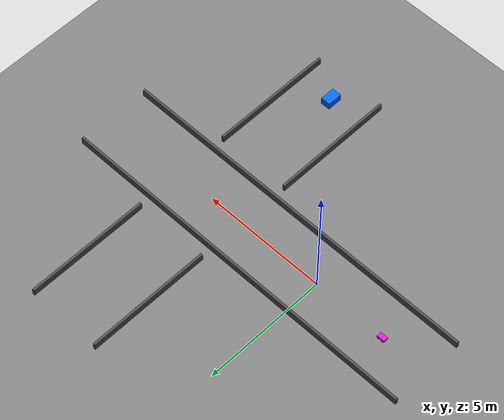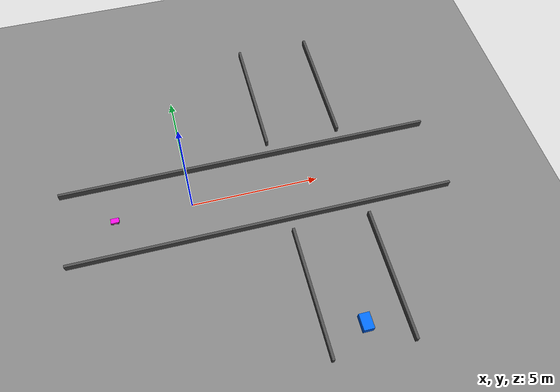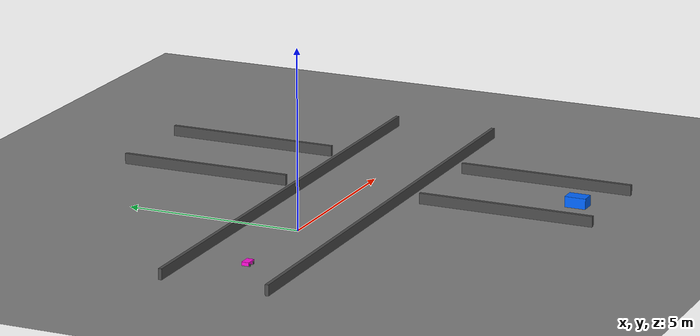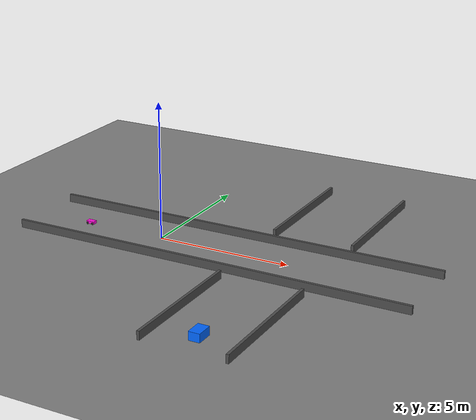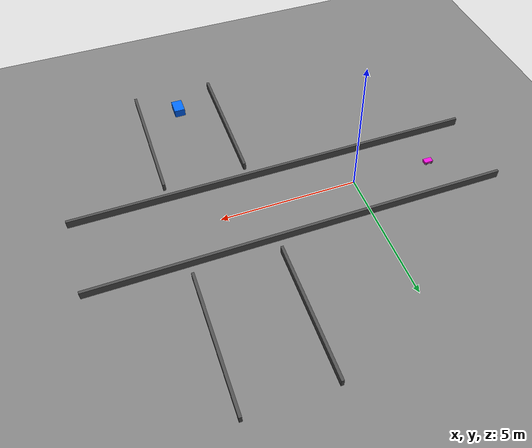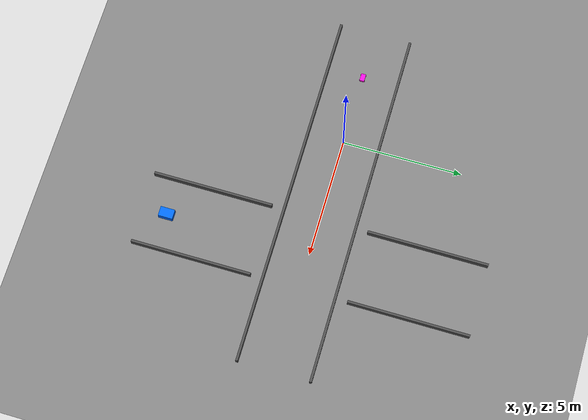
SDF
<?xml version="1.0" ?>
<sdf version="1.9">
  <world name="test_intersection">

    <physics name="fast" type="ode">
      <max_step_size>0.002</max_step_size>
      <real_time_factor>2.0</real_time_factor>
    </physics>

    <plugin filename="gz-sim-physics-system" name="gz::sim::systems::Physics"/>
    <plugin filename="gz-sim-user-commands-system" name="gz::sim::systems::UserCommands"/>
    <plugin filename="gz-sim-scene-broadcaster-system" name="gz::sim::systems::SceneBroadcaster"/>
    <plugin filename="gz-sim-sensors-system" name="gz::sim::systems::Sensors">
      <render_engine>ogre2</render_engine>
    </plugin>
    <plugin filename="gz-sim-imu-system" name="gz::sim::systems::Imu"/>
    <plugin filename="gz-sim-contact-system" name="gz::sim::systems::Contact"/>

    <light type="directional" name="sun">
      <pose>0 0 10 0 0 0</pose>
      <diffuse>0.9 0.9 0.9 1</diffuse>
      <direction>-0.5 0.1 -0.9</direction>
    </light>

    <!-- Ground -->
    <model name="ground">
      <static>true</static>
      <link name="link">
        <collision name="c"><geometry><plane><normal>0 0 1</normal><size>30 30</size></plane></geometry></collision>
        <visual name="v"><geometry><plane><normal>0 0 1</normal><size>30 30</size></plane></geometry>
          <material><ambient>0.5 0.5 0.5 1</ambient></material>
        </visual>
      </link>
    </model>

    <!-- East-west road boundaries -->
    <model name="road_ew_north">
      <static>true</static>
      <pose>2.5 1.5 0.15 0 0 0</pose>
      <link name="link">
        <visual name="v"><geometry><box><size>15 0.1 0.3</size></box></geometry>
          <material><ambient>0.3 0.3 0.3 1</ambient></material>
        </visual>
        <collision name="c"><geometry><box><size>15 0.1 0.3</size></box></geometry></collision>
      </link>
    </model>
    <model name="road_ew_south">
      <static>true</static>
      <pose>2.5 -1.5 0.15 0 0 0</pose>
      <link name="link">
        <visual name="v"><geometry><box><size>15 0.1 0.3</size></box></geometry>
          <material><ambient>0.3 0.3 0.3 1</ambient></material>
        </visual>
        <collision name="c"><geometry><box><size>15 0.1 0.3</size></box></geometry></collision>
      </link>
    </model>

    <!-- North-south road boundaries (with gap at intersection) -->
    <model name="road_ns_west_south">
      <static>true</static>
      <pose>3.5 -4.5 0.15 0 0 0</pose>
      <link name="link">
        <visual name="v"><geometry><box><size>0.1 5 0.3</size></box></geometry>
          <material><ambient>0.3 0.3 0.3 1</ambient></material>
        </visual>
        <collision name="c"><geometry><box><size>0.1 5 0.3</size></box></geometry></collision>
      </link>
    </model>
    <model name="road_ns_east_south">
      <static>true</static>
      <pose>6.5 -4.5 0.15 0 0 0</pose>
      <link name="link">
        <visual name="v"><geometry><box><size>0.1 5 0.3</size></box></geometry>
          <material><ambient>0.3 0.3 0.3 1</ambient></material>
        </visual>
        <collision name="c"><geometry><box><size>0.1 5 0.3</size></box></geometry></collision>
      </link>
    </model>
    <model name="road_ns_west_north">
      <static>true</static>
      <pose>3.5 4.5 0.15 0 0 0</pose>
      <link name="link">
        <visual name="v"><geometry><box><size>0.1 5 0.3</size></box></geometry>
          <material><ambient>0.3 0.3 0.3 1</ambient></material>
        </visual>
        <collision name="c"><geometry><box><size>0.1 5 0.3</size></box></geometry></collision>
      </link>
    </model>
    <model name="road_ns_east_north">
      <static>true</static>
      <pose>6.5 4.5 0.15 0 0 0</pose>
      <link name="link">
        <visual name="v"><geometry><box><size>0.1 5 0.3</size></box></geometry>
          <material><ambient>0.3 0.3 0.3 1</ambient></material>
        </visual>
        <collision name="c"><geometry><box><size>0.1 5 0.3</size></box></geometry></collision>
      </link>
    </model>

    <!-- Cross-traffic robot (blue box moving north through intersection) -->
    <model name="cross_traffic">
      <pose>5.0 -6.0 0.15 0 0 0</pose>
      <link name="body">
        <inertial><mass>2.0</mass>
          <inertia><ixx>0.02</ixx><iyy>0.02</iyy><izz>0.02</izz></inertia>
        </inertial>
        <visual name="v"><geometry><box><size>0.4 0.6 0.3</size></box></geometry>
          <material><ambient>0.0 0.3 0.8 1</ambient><diffuse>0.0 0.4 1.0 1</diffuse></material>
        </visual>
        <collision name="c"><geometry><box><size>0.4 0.6 0.3</size></box></geometry></collision>
      </link>
      <!-- Move northward at 0.5 m/s using a joint + velocity controller -->
      <plugin filename="gz-sim-triggered-publisher-system"
              name="gz::sim::systems::TriggeredPublisher">
        <input type="gz.msgs.Clock" topic="/clock"/>
        <output type="gz.msgs.Twist" topic="/cross_traffic/cmd_vel">
          linear: {x: 0.0, y: 0.5} angular: {z: 0.0}
        </output>
      </plugin>
    </model>

    <!-- Limo Pro robot -->
    <include>
      <uri>model://limo_pro</uri>
      <name>limo</name>
      <pose>-3 0 0.055 0 0 0</pose>
    </include>

  </world>
</sdf>

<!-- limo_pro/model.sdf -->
<sdf version="1.9">
  <model name="limo_pro">
    <static>false</static>

    <!-- ============ CHASSIS ============ -->
    <link name="base_link">
      <inertial>
        <mass>4.5</mass>
        <inertia>
          <ixx>0.045</ixx><iyy>0.08</iyy><izz>0.09</izz>
          <ixy>0</ixy><ixz>0</ixz><iyz>0</iyz>
        </inertia>
      </inertial>
      <visual name="chassis_visual">
        <geometry>
          <box><size>0.32 0.20 0.10</size></box>
        </geometry>
        <material>
          <ambient>1.0 0.0 0.85 1</ambient>
          <diffuse>1.0 0.05 0.85 1</diffuse>
          <emissive>0.35 0.0 0.3 1</emissive>
        </material>
      </visual>
      <collision name="chassis_collision">
        <geometry>
          <box><size>0.32 0.20 0.10</size></box>
        </geometry>
      </collision>

      <!-- ============ CAMERA SENSOR ============ -->
      <sensor name="camera" type="camera">
        <pose>0.16 0 0.12 0 0 0</pose>
        <always_on>true</always_on>
        <update_rate>30</update_rate>
        <topic>limo/camera</topic>
        <camera>
          <horizontal_fov>1.2</horizontal_fov>
          <image>
            <width>640</width>
            <height>480</height>
            <format>R8G8B8</format>
          </image>
          <clip><near>0.05</near><far>50</far></clip>
        </camera>
      </sensor>

      <!-- ============ LIDAR SENSOR ============ -->
      <sensor name="lidar" type="gpu_lidar">
        <pose>0.0 0 0.15 0 0 0</pose>
        <always_on>true</always_on>
        <update_rate>10</update_rate>
        <topic>limo/lidar</topic>
        <lidar>
          <scan>
            <horizontal>
              <samples>360</samples>
              <resolution>1</resolution>
              <min_angle>0</min_angle>
              <max_angle>6.28318</max_angle>
            </horizontal>
          </scan>
          <range>
            <min>0.1</min>
            <max>12.0</max>
            <resolution>0.01</resolution>
          </range>
        </lidar>
      </sensor>

      <!-- ============ IMU SENSOR ============ -->
      <sensor name="imu" type="imu">
        <pose>0 0 0.05 0 0 0</pose>
        <always_on>true</always_on>
        <update_rate>100</update_rate>
        <topic>limo/imu</topic>
        <imu>
          <angular_velocity>
            <x><noise type="gaussian"><mean>0</mean><stddev>0.001</stddev></noise></x>
            <y><noise type="gaussian"><mean>0</mean><stddev>0.001</stddev></noise></y>
            <z><noise type="gaussian"><mean>0</mean><stddev>0.001</stddev></noise></z>
          </angular_velocity>
          <linear_acceleration>
            <x><noise type="gaussian"><mean>0</mean><stddev>0.02</stddev></noise></x>
            <y><noise type="gaussian"><mean>0</mean><stddev>0.02</stddev></noise></y>
            <z><noise type="gaussian"><mean>0</mean><stddev>0.02</stddev></noise></z>
          </linear_acceleration>
        </imu>
      </sensor>
    </link>

    <!-- ============ REAR LEFT WHEEL ============ -->
    <link name="rear_left_wheel">
      <pose>-0.1 0.096 -0.03 -1.5707 0 0</pose>
      <inertial>
        <mass>0.3</mass>
        <inertia>
          <ixx>0.0002</ixx><iyy>0.0002</iyy><izz>0.0003</izz>
          <ixy>0</ixy><ixz>0</ixz><iyz>0</iyz>
        </inertia>
      </inertial>
      <visual name="visual">
        <geometry><cylinder><radius>0.045</radius><length>0.03</length></cylinder></geometry>
        <material><ambient>0.1 0.1 0.1 1</ambient><diffuse>0.15 0.15 0.15 1</diffuse></material>
      </visual>
      <collision name="collision">
        <geometry><cylinder><radius>0.045</radius><length>0.03</length></cylinder></geometry>
        <surface>
          <friction><ode><mu>1.0</mu><mu2>1.0</mu2></ode></friction>
        </surface>
      </collision>
    </link>
    <joint name="rear_left_wheel_joint" type="revolute">
      <parent>base_link</parent><child>rear_left_wheel</child>
      <axis><xyz>0 0 1</xyz></axis>
    </joint>

    <!-- ============ REAR RIGHT WHEEL ============ -->
    <link name="rear_right_wheel">
      <pose>-0.1 -0.096 -0.03 -1.5707 0 0</pose>
      <inertial>
        <mass>0.3</mass>
        <inertia>
          <ixx>0.0002</ixx><iyy>0.0002</iyy><izz>0.0003</izz>
          <ixy>0</ixy><ixz>0</ixz><iyz>0</iyz>
        </inertia>
      </inertial>
      <visual name="visual">
        <geometry><cylinder><radius>0.045</radius><length>0.03</length></cylinder></geometry>
        <material><ambient>0.1 0.1 0.1 1</ambient><diffuse>0.15 0.15 0.15 1</diffuse></material>
      </visual>
      <collision name="collision">
        <geometry><cylinder><radius>0.045</radius><length>0.03</length></cylinder></geometry>
        <surface>
          <friction><ode><mu>1.0</mu><mu2>1.0</mu2></ode></friction>
        </surface>
      </collision>
    </link>
    <joint name="rear_right_wheel_joint" type="revolute">
      <parent>base_link</parent><child>rear_right_wheel</child>
      <axis><xyz>0 0 1</xyz></axis>
    </joint>

    <!-- ============ FRONT LEFT STEERING + WHEEL ============ -->
    <link name="front_left_steering">
      <pose>0.1 0.096 -0.03 0 0 0</pose>
      <inertial><mass>0.05</mass>
        <inertia><ixx>0.00001</ixx><iyy>0.00001</iyy><izz>0.00001</izz>
          <ixy>0</ixy><ixz>0</ixz><iyz>0</iyz></inertia>
      </inertial>
    </link>
    <joint name="front_left_steering_joint" type="revolute">
      <parent>base_link</parent><child>front_left_steering</child>
      <axis><xyz>0 0 1</xyz>
        <limit><lower>-0.48</lower><upper>0.48</upper><effort>1e6</effort></limit>
      </axis>
    </joint>

    <link name="front_left_wheel">
      <pose>0.1 0.096 -0.03 -1.5707 0 0</pose>
      <inertial>
        <mass>0.3</mass>
        <inertia>
          <ixx>0.0002</ixx><iyy>0.0002</iyy><izz>0.0003</izz>
          <ixy>0</ixy><ixz>0</ixz><iyz>0</iyz>
        </inertia>
      </inertial>
      <visual name="visual">
        <geometry><cylinder><radius>0.045</radius><length>0.03</length></cylinder></geometry>
        <material><ambient>0.1 0.1 0.1 1</ambient><diffuse>0.15 0.15 0.15 1</diffuse></material>
      </visual>
      <collision name="collision">
        <geometry><cylinder><radius>0.045</radius><length>0.03</length></cylinder></geometry>
        <surface>
          <friction><ode><mu>1.0</mu><mu2>1.0</mu2></ode></friction>
        </surface>
      </collision>
    </link>
    <joint name="front_left_wheel_joint" type="revolute">
      <parent>front_left_steering</parent><child>front_left_wheel</child>
      <axis><xyz>0 0 1</xyz></axis>
    </joint>

    <!-- ============ FRONT RIGHT STEERING + WHEEL ============ -->
    <link name="front_right_steering">
      <pose>0.1 -0.096 -0.03 0 0 0</pose>
      <inertial><mass>0.05</mass>
        <inertia><ixx>0.00001</ixx><iyy>0.00001</iyy><izz>0.00001</izz>
          <ixy>0</ixy><ixz>0</ixz><iyz>0</iyz></inertia>
      </inertial>
    </link>
    <joint name="front_right_steering_joint" type="revolute">
      <parent>base_link</parent><child>front_right_steering</child>
      <axis><xyz>0 0 1</xyz>
        <limit><lower>-0.48</lower><upper>0.48</upper><effort>1e6</effort></limit>
      </axis>
    </joint>

    <link name="front_right_wheel">
      <pose>0.1 -0.096 -0.03 -1.5707 0 0</pose>
      <inertial>
        <mass>0.3</mass>
        <inertia>
          <ixx>0.0002</ixx><iyy>0.0002</iyy><izz>0.0003</izz>
          <ixy>0</ixy><ixz>0</ixz><iyz>0</iyz>
        </inertia>
      </inertial>
      <visual name="visual">
        <geometry><cylinder><radius>0.045</radius><length>0.03</length></cylinder></geometry>
        <material><ambient>0.1 0.1 0.1 1</ambient><diffuse>0.15 0.15 0.15 1</diffuse></material>
      </visual>
      <collision name="collision">
        <geometry><cylinder><radius>0.045</radius><length>0.03</length></cylinder></geometry>
        <surface>
          <friction><ode><mu>1.0</mu><mu2>1.0</mu2></ode></friction>
        </surface>
      </collision>
    </link>
    <joint name="front_right_wheel_joint" type="revolute">
      <parent>front_right_steering</parent><child>front_right_wheel</child>
      <axis><xyz>0 0 1</xyz></axis>
    </joint>

    <!-- ============ ACKERMANN STEERING PLUGIN ============ -->
    <plugin filename="gz-sim-ackermann-steering-system"
            name="gz::sim::systems::AckermannSteering">
      <left_joint>front_left_wheel_joint</left_joint>
      <right_joint>front_right_wheel_joint</right_joint>
      <left_steering_joint>front_left_steering_joint</left_steering_joint>
      <right_steering_joint>front_right_steering_joint</right_steering_joint>
      <kingpin_width>0.192</kingpin_width>
      <steering_limit>0.48</steering_limit>
      <steer_p_gain>8.0</steer_p_gain>
      <wheel_base>0.2</wheel_base>
      <wheel_separation>0.192</wheel_separation>
      <wheel_radius>0.045</wheel_radius>
      <topic>limo/cmd_vel</topic>
      <odom_topic>limo/odom</odom_topic>
      <tf_topic>limo/tf</tf_topic>
      <frame_id>odom</frame_id>
      <child_frame_id>base_link</child_frame_id>
      <odom_publish_frequency>20</odom_publish_frequency>
    </plugin>

    <!-- Joint state publisher for odometry -->
    <plugin filename="gz-sim-joint-state-publisher-system"
            name="gz::sim::systems::JointStatePublisher">
      <topic>limo/joint_states</topic>
    </plugin>

  </model>
</sdf>
